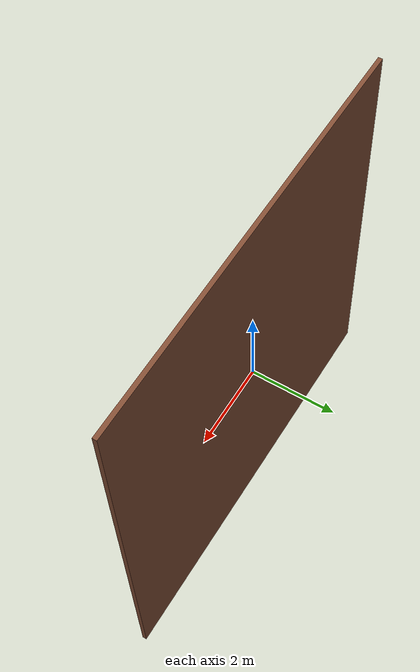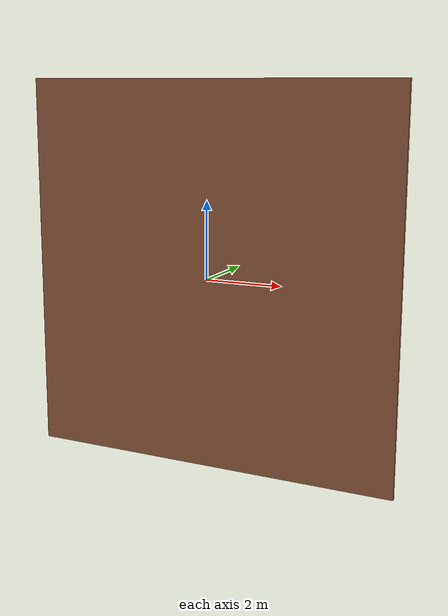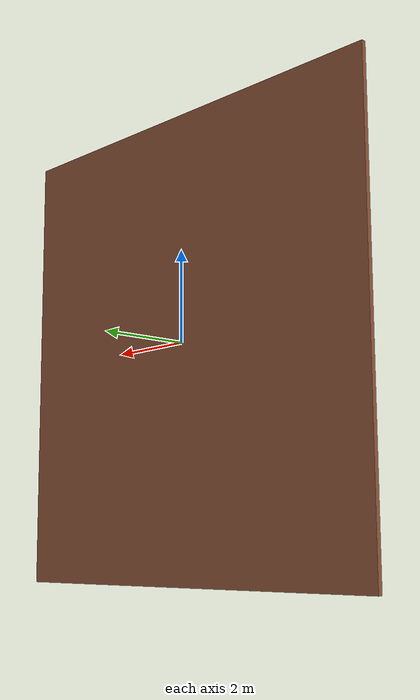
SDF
<?xml version="1.0" ?>
<sdf version="1.5">
  <model name="wall">
    <static>true</static>
    <pose>0 0 0 0 0 1.5708</pose> <!-- Position: (0, 0, 0), Orientation: (roll=0, pitch=0, yaw=90 degrees in radians) -->
    <link name="wall">
      <collision name="collision_wall">
        <geometry>
          <box>
            <size>0.001 10 10</size>  <!-- Length, Width, Height of the wall -->
          </box>
        </geometry>
      </collision>
      <visual name="visual_wall">
        <geometry>
          <box>
            <size>0.1 10 10</size>  <!-- Length, Width, Height of the wall -->
          </box>
        </geometry>
        <material>
          <ambient>0.4 0.2 0.1 1</ambient>  <!-- Brown color (R, G, B, Alpha) -->
          <diffuse>0.5 0.3 0.2 1</diffuse>  <!-- Slightly lighter brown -->
          <specular>0.1 0.1 0.1 1</specular> <!-- Subtle shine -->
          <emissive>0 0 0 1</emissive>       <!-- No emission -->
        </material>
      </visual>
    </link>
  </model>
</sdf>
